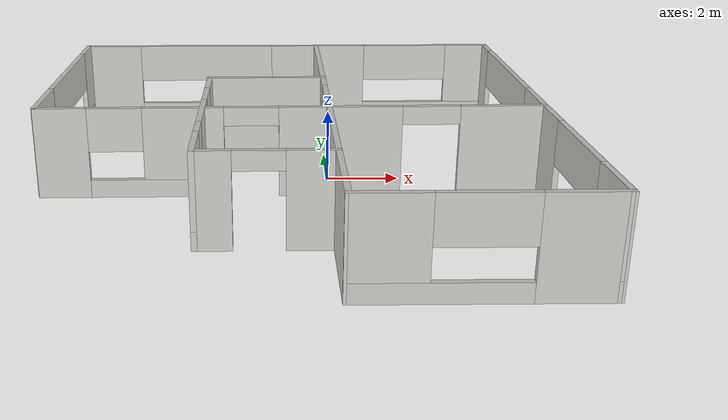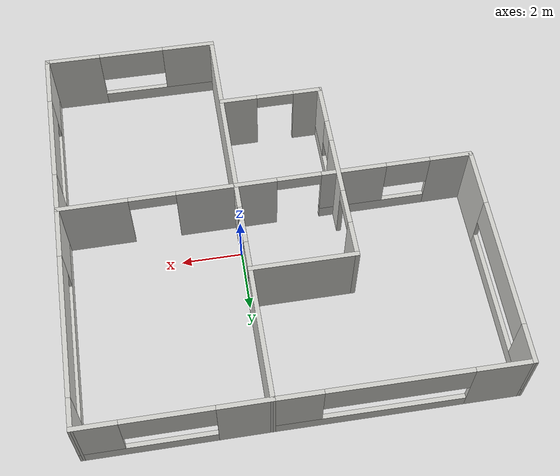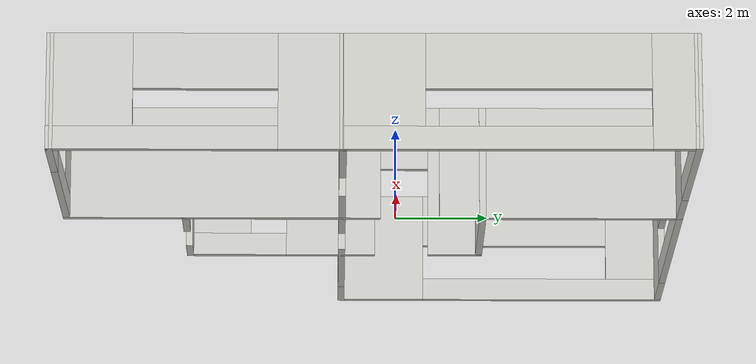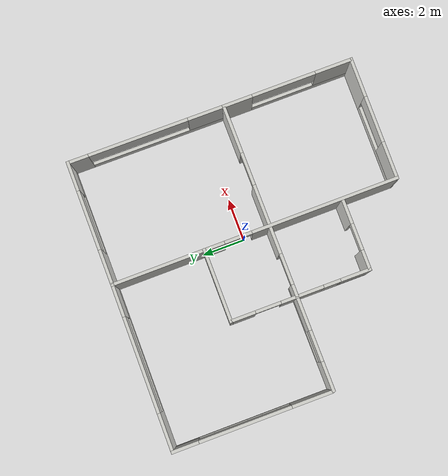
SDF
<?xml version='1.0'?>
<sdf version='1.6'>
  <model name='floor'>
    <pose frame=''>-1.0352 -0.484067 0 0 -0 0</pose>
    <link name='Wall_0'>
      <collision name='Wall_0_Collision'>
        <geometry>
          <box>
            <size>3.5 0.15 2.5</size>
          </box>
        </geometry>
        <pose frame=''>0 0 1.25 0 -0 0</pose>
      </collision>
      <visual name='Wall_0_Visual'>
        <pose frame=''>0 0 1.25 0 -0 0</pose>
        <geometry>
          <box>
            <size>3.5 0.15 2.5</size>
          </box>
        </geometry>
        <material>
          <script>
            <uri>file://media/materials/scripts/gazebo.material</uri>
            <name>Gazebo/CeilingTiled</name>
          </script>
          <ambient>0.921569 0.807843 0.615686 1</ambient>
        </material>
        <meta>
          <layer>0</layer>
        </meta>
      </visual>
      <pose frame=''>-0.680453 2.40138 0 0 -0 0</pose>
    </link>
    <link name='Wall_10'>
      <pose frame=''>3.86966 6.71461 0 0 -0 0</pose>
      <visual name='Wall_10_Visual_0'>
        <pose frame=''>-2.10615 0 1.25 0 -0 0</pose>
        <geometry>
          <box>
            <size>1.71925 0.15 2.5</size>
          </box>
        </geometry>
        <material>
          <script>
            <uri>file://media/materials/scripts/gazebo.material</uri>
            <name>Gazebo/CeilingTiled</name>
          </script>
          <ambient>0.996078 0.47451 0.0196078 1</ambient>
        </material>
        <meta>
          <layer>0</layer>
        </meta>
      </visual>
      <collision name='Wall_10_Collision_0'>
        <geometry>
          <box>
            <size>1.71925 0.15 2.5</size>
          </box>
        </geometry>
        <pose frame=''>-2.10615 0 1.25 0 -0 0</pose>
      </collision>
      <visual name='Wall_10_Visual_1'>
        <pose frame=''>0.859627 0 0.25 0 -0 0</pose>
        <geometry>
          <box>
            <size>4.2123 0.15 0.5</size>
          </box>
        </geometry>
        <material>
          <script>
            <uri>file://media/materials/scripts/gazebo.material</uri>
            <name>Gazebo/CeilingTiled</name>
          </script>
          <ambient>0.996078 0.47451 0.0196078 1</ambient>
        </material>
        <meta>
          <layer>0</layer>
        </meta>
      </visual>
      <collision name='Wall_10_Collision_1'>
        <geometry>
          <box>
            <size>4.2123 0.15 0.5</size>
          </box>
        </geometry>
        <pose frame=''>0.859627 0 0.25 0 -0 0</pose>
      </collision>
      <visual name='Wall_10_Visual_2'>
        <pose frame=''>2.25525 0 1.5 0 -0 0</pose>
        <geometry>
          <box>
            <size>1.42105 0.15 2</size>
          </box>
        </geometry>
        <material>
          <script>
            <uri>file://media/materials/scripts/gazebo.material</uri>
            <name>Gazebo/CeilingTiled</name>
          </script>
          <ambient>0.996078 0.47451 0.0196078 1</ambient>
        </material>
        <meta>
          <layer>0</layer>
        </meta>
      </visual>
      <collision name='Wall_10_Collision_2'>
        <geometry>
          <box>
            <size>1.42105 0.15 2</size>
          </box>
        </geometry>
        <pose frame=''>2.25525 0 1.5 0 -0 0</pose>
      </collision>
      <visual name='Wall_10_Visual_3'>
        <pose frame=''>0.1491 0 1.9 0 -0 0</pose>
        <geometry>
          <box>
            <size>2.79124 0.15 1.2</size>
          </box>
        </geometry>
        <material>
          <script>
            <uri>file://media/materials/scripts/gazebo.material</uri>
            <name>Gazebo/CeilingTiled</name>
          </script>
          <ambient>0.996078 0.47451 0.0196078 1</ambient>
        </material>
        <meta>
          <layer>0</layer>
        </meta>
      </visual>
      <collision name='Wall_10_Collision_3'>
        <geometry>
          <box>
            <size>2.79124 0.15 1.2</size>
          </box>
        </geometry>
        <pose frame=''>0.1491 0 1.9 0 -0 0</pose>
      </collision>
    </link>
    <link name='Wall_11'>
      <pose frame=''>6.74514 3.02848 0 0 0 -1.57495</pose>
      <visual name='Wall_11_Visual_0'>
        <pose frame=''>-3.24419 0 1.25 0 -0 0</pose>
        <geometry>
          <box>
            <size>1.03393 0.15 2.5</size>
          </box>
        </geometry>
        <material>
          <script>
            <uri>file://media/materials/scripts/gazebo.material</uri>
            <name>Gazebo/CeilingTiled</name>
          </script>
          <ambient>0.996078 0.47451 0.0196078 1</ambient>
        </material>
        <meta>
          <layer>0</layer>
        </meta>
      </visual>
      <collision name='Wall_11_Collision_0'>
        <geometry>
          <box>
            <size>1.03393 0.15 2.5</size>
          </box>
        </geometry>
        <pose frame=''>-3.24419 0 1.25 0 -0 0</pose>
      </collision>
      <visual name='Wall_11_Visual_1'>
        <pose frame=''>0.516965 0 0.25 0 -0 0</pose>
        <geometry>
          <box>
            <size>6.48838 0.15 0.5</size>
          </box>
        </geometry>
        <material>
          <script>
            <uri>file://media/materials/scripts/gazebo.material</uri>
            <name>Gazebo/CeilingTiled</name>
          </script>
          <ambient>0.996078 0.47451 0.0196078 1</ambient>
        </material>
        <meta>
          <layer>0</layer>
        </meta>
      </visual>
      <collision name='Wall_11_Collision_1'>
        <geometry>
          <box>
            <size>6.48838 0.15 0.5</size>
          </box>
        </geometry>
        <pose frame=''>0.516965 0 0.25 0 -0 0</pose>
      </collision>
      <visual name='Wall_11_Visual_2'>
        <pose frame=''>2.86792 0 1.5 0 -0 0</pose>
        <geometry>
          <box>
            <size>1.78646 0.15 2</size>
          </box>
        </geometry>
        <material>
          <script>
            <uri>file://media/materials/scripts/gazebo.material</uri>
            <name>Gazebo/CeilingTiled</name>
          </script>
          <ambient>0.996078 0.47451 0.0196078 1</ambient>
        </material>
        <meta>
          <layer>0</layer>
        </meta>
      </visual>
      <collision name='Wall_11_Collision_2'>
        <geometry>
          <box>
            <size>1.78646 0.15 2</size>
          </box>
        </geometry>
        <pose frame=''>2.86792 0 1.5 0 -0 0</pose>
      </collision>
      <visual name='Wall_11_Visual_3'>
        <pose frame=''>-0.376266 0 1.9 0 -0 0</pose>
        <geometry>
          <box>
            <size>4.70192 0.15 1.2</size>
          </box>
        </geometry>
        <material>
          <script>
            <uri>file://media/materials/scripts/gazebo.material</uri>
            <name>Gazebo/CeilingTiled</name>
          </script>
          <ambient>0.996078 0.47451 0.0196078 1</ambient>
        </material>
        <meta>
          <layer>0</layer>
        </meta>
      </visual>
      <collision name='Wall_11_Collision_3'>
        <geometry>
          <box>
            <size>4.70192 0.15 1.2</size>
          </box>
        </geometry>
        <pose frame=''>-0.376266 0 1.9 0 -0 0</pose>
      </collision>
    </link>
    <link name='Wall_13'>
      <pose frame=''>-6.76045 3.04378 0 0 -0 1.5708</pose>
      <visual name='Wall_13_Visual_0'>
        <pose frame=''>-2.80286 0 1.25 0 -0 0</pose>
        <geometry>
          <box>
            <size>1.94712 0.15 2.5</size>
          </box>
        </geometry>
        <material>
          <script>
            <uri>file://media/materials/scripts/gazebo.material</uri>
            <name>Gazebo/CeilingTiled</name>
          </script>
          <ambient>0.996078 0.47451 0.0196078 1</ambient>
        </material>
        <meta>
          <layer>0</layer>
        </meta>
      </visual>
      <collision name='Wall_13_Collision_0'>
        <geometry>
          <box>
            <size>1.94712 0.15 2.5</size>
          </box>
        </geometry>
        <pose frame=''>-2.80286 0 1.25 0 -0 0</pose>
      </collision>
      <visual name='Wall_13_Visual_1'>
        <pose frame=''>0.97356 0 0.25 0 -0 0</pose>
        <geometry>
          <box>
            <size>5.60571 0.15 0.5</size>
          </box>
        </geometry>
        <material>
          <script>
            <uri>file://media/materials/scripts/gazebo.material</uri>
            <name>Gazebo/CeilingTiled</name>
          </script>
          <ambient>0.996078 0.47451 0.0196078 1</ambient>
        </material>
        <meta>
          <layer>0</layer>
        </meta>
      </visual>
      <collision name='Wall_13_Collision_1'>
        <geometry>
          <box>
            <size>5.60571 0.15 0.5</size>
          </box>
        </geometry>
        <pose frame=''>0.97356 0 0.25 0 -0 0</pose>
      </collision>
      <visual name='Wall_13_Visual_2'>
        <pose frame=''>3.1335 0 1.5 0 -0 0</pose>
        <geometry>
          <box>
            <size>1.28584 0.15 2</size>
          </box>
        </geometry>
        <material>
          <script>
            <uri>file://media/materials/scripts/gazebo.material</uri>
            <name>Gazebo/CeilingTiled</name>
          </script>
          <ambient>0.996078 0.47451 0.0196078 1</ambient>
        </material>
        <meta>
          <layer>0</layer>
        </meta>
      </visual>
      <collision name='Wall_13_Collision_2'>
        <geometry>
          <box>
            <size>1.28584 0.15 2</size>
          </box>
        </geometry>
        <pose frame=''>3.1335 0 1.5 0 -0 0</pose>
      </collision>
      <visual name='Wall_13_Visual_3'>
        <pose frame=''>0.330641 0 1.9 0 -0 0</pose>
        <geometry>
          <box>
            <size>4.31987 0.15 1.2</size>
          </box>
        </geometry>
        <material>
          <script>
            <uri>file://media/materials/scripts/gazebo.material</uri>
            <name>Gazebo/CeilingTiled</name>
          </script>
          <ambient>0.996078 0.47451 0.0196078 1</ambient>
        </material>
        <meta>
          <layer>0</layer>
        </meta>
      </visual>
      <collision name='Wall_13_Collision_3'>
        <geometry>
          <box>
            <size>4.31987 0.15 1.2</size>
          </box>
        </geometry>
        <pose frame=''>0.330641 0 1.9 0 -0 0</pose>
      </collision>
    </link>
    <link name='Wall_14'>
      <pose frame=''>-2.93667 6.7299 0 0 0 -0.004</pose>
      <visual name='Wall_14_Visual_0'>
        <pose frame=''>-2.97598 0 1.25 0 -0 0</pose>
        <geometry>
          <box>
            <size>1.84566 0.15 2.5</size>
          </box>
        </geometry>
        <material>
          <script>
            <uri>file://media/materials/scripts/gazebo.material</uri>
            <name>Gazebo/CeilingTiled</name>
          </script>
          <ambient>0.996078 0.47451 0.0196078 1</ambient>
        </material>
        <meta>
          <layer>0</layer>
        </meta>
      </visual>
      <collision name='Wall_14_Collision_0'>
        <geometry>
          <box>
            <size>1.84566 0.15 2.5</size>
          </box>
        </geometry>
        <pose frame=''>-2.97598 0 1.25 0 -0 0</pose>
      </collision>
      <visual name='Wall_14_Visual_1'>
        <pose frame=''>0.922833 0 0.25 0 -0 0</pose>
        <geometry>
          <box>
            <size>5.95195 0.15 0.5</size>
          </box>
        </geometry>
        <material>
          <script>
            <uri>file://media/materials/scripts/gazebo.material</uri>
            <name>Gazebo/CeilingTiled</name>
          </script>
          <ambient>0.996078 0.47451 0.0196078 1</ambient>
        </material>
        <meta>
          <layer>0</layer>
        </meta>
      </visual>
      <collision name='Wall_14_Collision_1'>
        <geometry>
          <box>
            <size>5.95195 0.15 0.5</size>
          </box>
        </geometry>
        <pose frame=''>0.922833 0 0.25 0 -0 0</pose>
      </collision>
      <visual name='Wall_14_Visual_2'>
        <pose frame=''>3.15291 0 1.5 0 -0 0</pose>
        <geometry>
          <box>
            <size>1.49179 0.15 2</size>
          </box>
        </geometry>
        <material>
          <script>
            <uri>file://media/materials/scripts/gazebo.material</uri>
            <name>Gazebo/CeilingTiled</name>
          </script>
          <ambient>0.996078 0.47451 0.0196078 1</ambient>
        </material>
        <meta>
          <layer>0</layer>
        </meta>
      </visual>
      <collision name='Wall_14_Collision_2'>
        <geometry>
          <box>
            <size>1.49179 0.15 2</size>
          </box>
        </geometry>
        <pose frame=''>3.15291 0 1.5 0 -0 0</pose>
      </collision>
      <visual name='Wall_14_Visual_3'>
        <pose frame=''>0.176935 0 1.9 0 -0 0</pose>
        <geometry>
          <box>
            <size>4.46016 0.15 1.2</size>
          </box>
        </geometry>
        <material>
          <script>
            <uri>file://media/materials/scripts/gazebo.material</uri>
            <name>Gazebo/CeilingTiled</name>
          </script>
          <ambient>0.996078 0.47451 0.0196078 1</ambient>
        </material>
        <meta>
          <layer>0</layer>
        </meta>
      </visual>
      <collision name='Wall_14_Collision_3'>
        <geometry>
          <box>
            <size>4.46016 0.15 1.2</size>
          </box>
        </geometry>
        <pose frame=''>0.176935 0 1.9 0 -0 0</pose>
      </collision>
    </link>
    <link name='Wall_16'>
      <pose frame=''>-2.35545 -0.856476 0 0 0 -1.5708</pose>
      <visual name='Wall_16_Visual_0'>
        <pose frame=''>-2.72153 0 1.25 0 -0 0</pose>
        <geometry>
          <box>
            <size>1.22295 0.15 2.5</size>
          </box>
        </geometry>
        <material>
          <script>
            <uri>file://media/materials/scripts/gazebo.material</uri>
            <name>Gazebo/CeilingTiled</name>
          </script>
          <ambient>0.996078 0.47451 0.0196078 1</ambient>
        </material>
        <meta>
          <layer>0</layer>
        </meta>
      </visual>
      <collision name='Wall_16_Collision_0'>
        <geometry>
          <box>
            <size>1.22295 0.15 2.5</size>
          </box>
        </geometry>
        <pose frame=''>-2.72153 0 1.25 0 -0 0</pose>
      </collision>
      <visual name='Wall_16_Visual_1'>
        <pose frame=''>0.091031 0 1.25 0 -0 0</pose>
        <geometry>
          <box>
            <size>2.00077 0.15 2.5</size>
          </box>
        </geometry>
        <material>
          <script>
            <uri>file://media/materials/scripts/gazebo.material</uri>
            <name>Gazebo/CeilingTiled</name>
          </script>
          <ambient>0.996078 0.47451 0.0196078 1</ambient>
        </material>
        <meta>
          <layer>0</layer>
        </meta>
      </visual>
      <collision name='Wall_16_Collision_1'>
        <geometry>
          <box>
            <size>2.00077 0.15 2.5</size>
          </box>
        </geometry>
        <pose frame=''>0.091031 0 1.25 0 -0 0</pose>
      </collision>
      <visual name='Wall_16_Visual_2'>
        <pose frame=''>2.21221 0 0.25 0 -0 0</pose>
        <geometry>
          <box>
            <size>2.24159 0.15 0.5</size>
          </box>
        </geometry>
        <material>
          <script>
            <uri>file://media/materials/scripts/gazebo.material</uri>
            <name>Gazebo/CeilingTiled</name>
          </script>
          <ambient>0.996078 0.47451 0.0196078 1</ambient>
        </material>
        <meta>
          <layer>0</layer>
        </meta>
      </visual>
      <collision name='Wall_16_Collision_2'>
        <geometry>
          <box>
            <size>2.24159 0.15 0.5</size>
          </box>
        </geometry>
        <pose frame=''>2.21221 0 0.25 0 -0 0</pose>
      </collision>
      <visual name='Wall_16_Visual_3'>
        <pose frame=''>2.61221 0 1.5 0 -0 0</pose>
        <geometry>
          <box>
            <size>1.44159 0.15 2</size>
          </box>
        </geometry>
        <material>
          <script>
            <uri>file://media/materials/scripts/gazebo.material</uri>
            <name>Gazebo/CeilingTiled</name>
          </script>
          <ambient>0.996078 0.47451 0.0196078 1</ambient>
        </material>
        <meta>
          <layer>0</layer>
        </meta>
      </visual>
      <collision name='Wall_16_Collision_3'>
        <geometry>
          <box>
            <size>1.44159 0.15 2</size>
          </box>
        </geometry>
        <pose frame=''>2.61221 0 1.5 0 -0 0</pose>
      </collision>
      <visual name='Wall_16_Visual_4'>
        <pose frame=''>1.49142 0 1.9 0 -0 0</pose>
        <geometry>
          <box>
            <size>0.8 0.15 1.2</size>
          </box>
        </geometry>
        <material>
          <script>
            <uri>file://media/materials/scripts/gazebo.material</uri>
            <name>Gazebo/CeilingTiled</name>
          </script>
          <ambient>0.996078 0.47451 0.0196078 1</ambient>
        </material>
        <meta>
          <layer>0</layer>
        </meta>
      </visual>
      <collision name='Wall_16_Collision_4'>
        <geometry>
          <box>
            <size>0.8 0.15 1.2</size>
          </box>
        </geometry>
        <pose frame=''>1.49142 0 1.9 0 -0 0</pose>
      </collision>
      <visual name='Wall_16_Visual_5'>
        <pose frame=''>-1.5097 0 2.25 0 -0 0</pose>
        <geometry>
          <box>
            <size>1.2007 0.15 0.5</size>
          </box>
        </geometry>
        <material>
          <script>
            <uri>file://media/materials/scripts/gazebo.material</uri>
            <name>Gazebo/CeilingTiled</name>
          </script>
          <ambient>0.996078 0.47451 0.0196078 1</ambient>
        </material>
        <meta>
          <layer>0</layer>
        </meta>
      </visual>
      <collision name='Wall_16_Collision_5'>
        <geometry>
          <box>
            <size>1.2007 0.15 0.5</size>
          </box>
        </geometry>
        <pose frame=''>-1.5097 0 2.25 0 -0 0</pose>
      </collision>
    </link>
    <link name='Wall_19'>
      <pose frame=''>-0.680453 -4.11433 0 0 -0 0</pose>
      <visual name='Wall_19_Visual_0'>
        <pose frame=''>-1.25768 0 1.25 0 -0 0</pose>
        <geometry>
          <box>
            <size>0.984642 0.15 2.5</size>
          </box>
        </geometry>
        <material>
          <script>
            <uri>file://media/materials/scripts/gazebo.material</uri>
            <name>Gazebo/CeilingTiled</name>
          </script>
          <ambient>0.921569 0.807843 0.615686 1</ambient>
        </material>
        <meta>
          <layer>0</layer>
        </meta>
      </visual>
      <collision name='Wall_19_Collision_0'>
        <geometry>
          <box>
            <size>0.984642 0.15 2.5</size>
          </box>
        </geometry>
        <pose frame=''>-1.25768 0 1.25 0 -0 0</pose>
      </collision>
      <visual name='Wall_19_Visual_1'>
        <pose frame=''>1.1158 0 1.25 0 -0 0</pose>
        <geometry>
          <box>
            <size>1.2684 0.15 2.5</size>
          </box>
        </geometry>
        <material>
          <script>
            <uri>file://media/materials/scripts/gazebo.material</uri>
            <name>Gazebo/CeilingTiled</name>
          </script>
          <ambient>0.921569 0.807843 0.615686 1</ambient>
        </material>
        <meta>
          <layer>0</layer>
        </meta>
      </visual>
      <collision name='Wall_19_Collision_1'>
        <geometry>
          <box>
            <size>1.2684 0.15 2.5</size>
          </box>
        </geometry>
        <pose frame=''>1.1158 0 1.25 0 -0 0</pose>
      </collision>
      <visual name='Wall_19_Visual_2'>
        <pose frame=''>-0.141879 0 2.25 0 -0 0</pose>
        <geometry>
          <box>
            <size>1.24696 0.15 0.5</size>
          </box>
        </geometry>
        <material>
          <script>
            <uri>file://media/materials/scripts/gazebo.material</uri>
            <name>Gazebo/CeilingTiled</name>
          </script>
          <ambient>0.921569 0.807843 0.615686 1</ambient>
        </material>
        <meta>
          <layer>0</layer>
        </meta>
      </visual>
      <collision name='Wall_19_Collision_2'>
        <geometry>
          <box>
            <size>1.24696 0.15 0.5</size>
          </box>
        </geometry>
        <pose frame=''>-0.141879 0 2.25 0 -0 0</pose>
      </collision>
    </link>
    <link name='Wall_6'>
      <pose frame=''>-5e-06 -0.68823 0 0 -0 0.004545</pose>
      <visual name='Wall_6_Visual_0'>
        <pose frame=''>-6.09809 0 1.25 0 -0 0</pose>
        <geometry>
          <box>
            <size>1.41365 0.15 2.5</size>
          </box>
        </geometry>
        <material>
          <script>
            <uri>file://media/materials/scripts/gazebo.material</uri>
            <name>Gazebo/CeilingTiled</name>
          </script>
          <ambient>0.921569 0.807843 0.615686 1</ambient>
        </material>
        <meta>
          <layer>0</layer>
        </meta>
      </visual>
      <collision name='Wall_6_Collision_0'>
        <geometry>
          <box>
            <size>1.41365 0.15 2.5</size>
          </box>
        </geometry>
        <pose frame=''>-6.09809 0 1.25 0 -0 0</pose>
      </collision>
      <visual name='Wall_6_Visual_1'>
        <pose frame=''>1.30078 0 1.25 0 -0 0</pose>
        <geometry>
          <box>
            <size>3.27649 0.15 2.5</size>
          </box>
        </geometry>
        <material>
          <script>
            <uri>file://media/materials/scripts/gazebo.material</uri>
            <name>Gazebo/CeilingTiled</name>
          </script>
          <ambient>0.921569 0.807843 0.615686 1</ambient>
        </material>
        <meta>
          <layer>0</layer>
        </meta>
      </visual>
      <collision name='Wall_6_Collision_1'>
        <geometry>
          <box>
            <size>3.27649 0.15 2.5</size>
          </box>
        </geometry>
        <pose frame=''>1.30078 0 1.25 0 -0 0</pose>
      </collision>
      <visual name='Wall_6_Visual_2'>
        <pose frame=''>5.64099 0 1.25 0 -0 0</pose>
        <geometry>
          <box>
            <size>2.32786 0.15 2.5</size>
          </box>
        </geometry>
        <material>
          <script>
            <uri>file://media/materials/scripts/gazebo.material</uri>
            <name>Gazebo/CeilingTiled</name>
          </script>
          <ambient>0.921569 0.807843 0.615686 1</ambient>
        </material>
        <meta>
          <layer>0</layer>
        </meta>
      </visual>
      <collision name='Wall_6_Collision_2'>
        <geometry>
          <box>
            <size>2.32786 0.15 2.5</size>
          </box>
        </geometry>
        <pose frame=''>5.64099 0 1.25 0 -0 0</pose>
      </collision>
      <visual name='Wall_6_Visual_3'>
        <pose frame=''>-3.59193 0 0.25 0 -0 0</pose>
        <geometry>
          <box>
            <size>3.59867 0.15 0.5</size>
          </box>
        </geometry>
        <material>
          <script>
            <uri>file://media/materials/scripts/gazebo.material</uri>
            <name>Gazebo/CeilingTiled</name>
          </script>
          <ambient>0.921569 0.807843 0.615686 1</ambient>
        </material>
        <meta>
          <layer>0</layer>
        </meta>
      </visual>
      <collision name='Wall_6_Collision_3'>
        <geometry>
          <box>
            <size>3.59867 0.15 0.5</size>
          </box>
        </geometry>
        <pose frame=''>-3.59193 0 0.25 0 -0 0</pose>
      </collision>
      <visual name='Wall_6_Visual_4'>
        <pose frame=''>-2.86816 0 1.5 0 -0 0</pose>
        <geometry>
          <box>
            <size>2.15113 0.15 2</size>
          </box>
        </geometry>
        <material>
          <script>
            <uri>file://media/materials/scripts/gazebo.material</uri>
            <name>Gazebo/CeilingTiled</name>
          </script>
          <ambient>0.921569 0.807843 0.615686 1</ambient>
        </material>
        <meta>
          <layer>0</layer>
        </meta>
      </visual>
      <collision name='Wall_6_Collision_4'>
        <geometry>
          <box>
            <size>2.15113 0.15 2</size>
          </box>
        </geometry>
        <pose frame=''>-2.86816 0 1.5 0 -0 0</pose>
      </collision>
      <visual name='Wall_6_Visual_5'>
        <pose frame=''>-4.6675 0 1.9 0 -0 0</pose>
        <geometry>
          <box>
            <size>1.44755 0.15 1.2</size>
          </box>
        </geometry>
        <material>
          <script>
            <uri>file://media/materials/scripts/gazebo.material</uri>
            <name>Gazebo/CeilingTiled</name>
          </script>
          <ambient>0.921569 0.807843 0.615686 1</ambient>
        </material>
        <meta>
          <layer>0</layer>
        </meta>
      </visual>
      <collision name='Wall_6_Collision_5'>
        <geometry>
          <box>
            <size>1.44755 0.15 1.2</size>
          </box>
        </geometry>
        <pose frame=''>-4.6675 0 1.9 0 -0 0</pose>
      </collision>
      <visual name='Wall_6_Visual_6'>
        <pose frame=''>3.70804 0 2.25 0 -0 0</pose>
        <geometry>
          <box>
            <size>1.53804 0.15 0.5</size>
          </box>
        </geometry>
        <material>
          <script>
            <uri>file://media/materials/scripts/gazebo.material</uri>
            <name>Gazebo/CeilingTiled</name>
          </script>
          <ambient>0.921569 0.807843 0.615686 1</ambient>
        </material>
        <meta>
          <layer>0</layer>
        </meta>
      </visual>
      <collision name='Wall_6_Collision_6'>
        <geometry>
          <box>
            <size>1.53804 0.15 0.5</size>
          </box>
        </geometry>
        <pose frame=''>3.70804 0 2.25 0 -0 0</pose>
      </collision>
      <visual name='Wall_6_Visual_7'>
        <pose frame=''>-1.06503 0 2.25 0 -0 0</pose>
        <geometry>
          <box>
            <size>1.45513 0.15 0.5</size>
          </box>
        </geometry>
        <material>
          <script>
            <uri>file://media/materials/scripts/gazebo.material</uri>
            <name>Gazebo/CeilingTiled</name>
          </script>
          <ambient>0.921569 0.807843 0.615686 1</ambient>
        </material>
        <meta>
          <layer>0</layer>
        </meta>
      </visual>
      <collision name='Wall_6_Collision_7'>
        <geometry>
          <box>
            <size>1.45513 0.15 0.5</size>
          </box>
        </geometry>
        <pose frame=''>-1.06503 0 2.25 0 -0 0</pose>
      </collision>
    </link>
    <link name='Wall_7'>
      <pose frame=''>6.72985 -3.70137 0 0 0 -1.5708</pose>
      <visual name='Wall_7_Visual_0'>
        <pose frame=''>-2.40595 0 1.25 0 -0 0</pose>
        <geometry>
          <box>
            <size>1.42563 0.15 2.5</size>
          </box>
        </geometry>
        <material>
          <script>
            <uri>file://media/materials/scripts/gazebo.material</uri>
            <name>Gazebo/CeilingTiled</name>
          </script>
          <ambient>0.996078 0.47451 0.0196078 1</ambient>
        </material>
        <meta>
          <layer>0</layer>
        </meta>
      </visual>
      <collision name='Wall_7_Collision_0'>
        <geometry>
          <box>
            <size>1.42563 0.15 2.5</size>
          </box>
        </geometry>
        <pose frame=''>-2.40595 0 1.25 0 -0 0</pose>
      </collision>
      <visual name='Wall_7_Visual_1'>
        <pose frame=''>0.712816 0 0.25 0 -0 0</pose>
        <geometry>
          <box>
            <size>4.8119 0.15 0.5</size>
          </box>
        </geometry>
        <material>
          <script>
            <uri>file://media/materials/scripts/gazebo.material</uri>
            <name>Gazebo/CeilingTiled</name>
          </script>
          <ambient>0.996078 0.47451 0.0196078 1</ambient>
        </material>
        <meta>
          <layer>0</layer>
        </meta>
      </visual>
      <collision name='Wall_7_Collision_1'>
        <geometry>
          <box>
            <size>4.8119 0.15 0.5</size>
          </box>
        </geometry>
        <pose frame=''>0.712816 0 0.25 0 -0 0</pose>
      </collision>
      <visual name='Wall_7_Visual_2'>
        <pose frame=''>2.21906 0 1.5 0 -0 0</pose>
        <geometry>
          <box>
            <size>1.79941 0.15 2</size>
          </box>
        </geometry>
        <material>
          <script>
            <uri>file://media/materials/scripts/gazebo.material</uri>
            <name>Gazebo/CeilingTiled</name>
          </script>
          <ambient>0.996078 0.47451 0.0196078 1</ambient>
        </material>
        <meta>
          <layer>0</layer>
        </meta>
      </visual>
      <collision name='Wall_7_Collision_2'>
        <geometry>
          <box>
            <size>1.79941 0.15 2</size>
          </box>
        </geometry>
        <pose frame=''>2.21906 0 1.5 0 -0 0</pose>
      </collision>
      <visual name='Wall_7_Visual_3'>
        <pose frame=''>-0.186888 0 1.9 0 -0 0</pose>
        <geometry>
          <box>
            <size>3.01249 0.15 1.2</size>
          </box>
        </geometry>
        <material>
          <script>
            <uri>file://media/materials/scripts/gazebo.material</uri>
            <name>Gazebo/CeilingTiled</name>
          </script>
          <ambient>0.996078 0.47451 0.0196078 1</ambient>
        </material>
        <meta>
          <layer>0</layer>
        </meta>
      </visual>
      <collision name='Wall_7_Collision_3'>
        <geometry>
          <box>
            <size>3.01249 0.15 1.2</size>
          </box>
        </geometry>
        <pose frame=''>-0.186888 0 1.9 0 -0 0</pose>
      </collision>
    </link>
    <link name='Wall_8'>
      <pose frame=''>3.86966 -6.7298 0 0 -0 3.13625</pose>
      <visual name='Wall_8_Visual_0'>
        <pose frame=''>-1.99488 0 1.25 0 -0 0</pose>
        <geometry>
          <box>
            <size>1.8807 0.15 2.5</size>
          </box>
        </geometry>
        <material>
          <script>
            <uri>file://media/materials/scripts/gazebo.material</uri>
            <name>Gazebo/CeilingTiled</name>
          </script>
          <ambient>0.996078 0.47451 0.0196078 1</ambient>
        </material>
        <meta>
          <layer>0</layer>
        </meta>
      </visual>
      <collision name='Wall_8_Collision_0'>
        <geometry>
          <box>
            <size>1.8807 0.15 2.5</size>
          </box>
        </geometry>
        <pose frame=''>-1.99488 0 1.25 0 -0 0</pose>
      </collision>
      <visual name='Wall_8_Visual_1'>
        <pose frame=''>0.940351 0 0.25 0 -0 0</pose>
        <geometry>
          <box>
            <size>3.98975 0.15 0.5</size>
          </box>
        </geometry>
        <material>
          <script>
            <uri>file://media/materials/scripts/gazebo.material</uri>
            <name>Gazebo/CeilingTiled</name>
          </script>
          <ambient>0.996078 0.47451 0.0196078 1</ambient>
        </material>
        <meta>
          <layer>0</layer>
        </meta>
      </visual>
      <collision name='Wall_8_Collision_1'>
        <geometry>
          <box>
            <size>3.98975 0.15 0.5</size>
          </box>
        </geometry>
        <pose frame=''>0.940351 0 0.25 0 -0 0</pose>
      </collision>
      <visual name='Wall_8_Visual_2'>
        <pose frame=''>2.03431 0 1.5 0 -0 0</pose>
        <geometry>
          <box>
            <size>1.80183 0.15 2</size>
          </box>
        </geometry>
        <material>
          <script>
            <uri>file://media/materials/scripts/gazebo.material</uri>
            <name>Gazebo/CeilingTiled</name>
          </script>
          <ambient>0.996078 0.47451 0.0196078 1</ambient>
        </material>
        <meta>
          <layer>0</layer>
        </meta>
      </visual>
      <collision name='Wall_8_Collision_2'>
        <geometry>
          <box>
            <size>1.80183 0.15 2</size>
          </box>
        </geometry>
        <pose frame=''>2.03431 0 1.5 0 -0 0</pose>
      </collision>
      <visual name='Wall_8_Visual_3'>
        <pose frame=''>0.039436 0 1.9 0 -0 0</pose>
        <geometry>
          <box>
            <size>2.18792 0.15 1.2</size>
          </box>
        </geometry>
        <material>
          <script>
            <uri>file://media/materials/scripts/gazebo.material</uri>
            <name>Gazebo/CeilingTiled</name>
          </script>
          <ambient>0.996078 0.47451 0.0196078 1</ambient>
        </material>
        <meta>
          <layer>0</layer>
        </meta>
      </visual>
      <collision name='Wall_8_Collision_3'>
        <geometry>
          <box>
            <size>2.18792 0.15 1.2</size>
          </box>
        </geometry>
        <pose frame=''>0.039436 0 1.9 0 -0 0</pose>
      </collision>
    </link>
    <link name='Wall_9'>
      <pose frame=''>0.994177 5e-05 0 0 -0 1.57307</pose>
      <visual name='Wall_9_Visual_0'>
        <pose frame=''>-3.31645 0 1.25 0 -0 0</pose>
        <geometry>
          <box>
            <size>6.94625 0.15 2.5</size>
          </box>
        </geometry>
        <material>
          <script>
            <uri>file://media/materials/scripts/gazebo.material</uri>
            <name>Gazebo/CeilingTiled</name>
          </script>
          <ambient>0.921569 0.807843 0.615686 1</ambient>
        </material>
        <meta>
          <layer>0</layer>
        </meta>
      </visual>
      <collision name='Wall_9_Collision_0'>
        <geometry>
          <box>
            <size>6.94625 0.15 2.5</size>
          </box>
        </geometry>
        <pose frame=''>-3.31645 0 1.25 0 -0 0</pose>
      </collision>
      <visual name='Wall_9_Visual_1'>
        <pose frame=''>4.11974 0 1.25 0 -0 0</pose>
        <geometry>
          <box>
            <size>5.33967 0.15 2.5</size>
          </box>
        </geometry>
        <material>
          <script>
            <uri>file://media/materials/scripts/gazebo.material</uri>
            <name>Gazebo/CeilingTiled</name>
          </script>
          <ambient>0.921569 0.807843 0.615686 1</ambient>
        </material>
        <meta>
          <layer>0</layer>
        </meta>
      </visual>
      <collision name='Wall_9_Collision_1'>
        <geometry>
          <box>
            <size>5.33967 0.15 2.5</size>
          </box>
        </geometry>
        <pose frame=''>4.11974 0 1.25 0 -0 0</pose>
      </collision>
      <visual name='Wall_9_Visual_2'>
        <pose frame=''>0.803289 0 2.25 0 -0 0</pose>
        <geometry>
          <box>
            <size>1.29322 0.15 0.5</size>
          </box>
        </geometry>
        <material>
          <script>
            <uri>file://media/materials/scripts/gazebo.material</uri>
            <name>Gazebo/CeilingTiled</name>
          </script>
          <ambient>0.921569 0.807843 0.615686 1</ambient>
        </material>
        <meta>
          <layer>0</layer>
        </meta>
      </visual>
      <collision name='Wall_9_Collision_2'>
        <geometry>
          <box>
            <size>1.29322 0.15 0.5</size>
          </box>
        </geometry>
        <pose frame=''>0.803289 0 2.25 0 -0 0</pose>
      </collision>
    </link>
    <static>1</static>
  </model>
</sdf>
